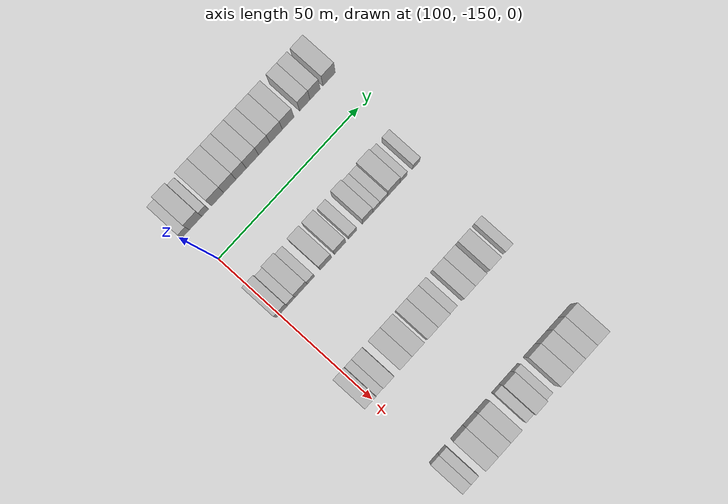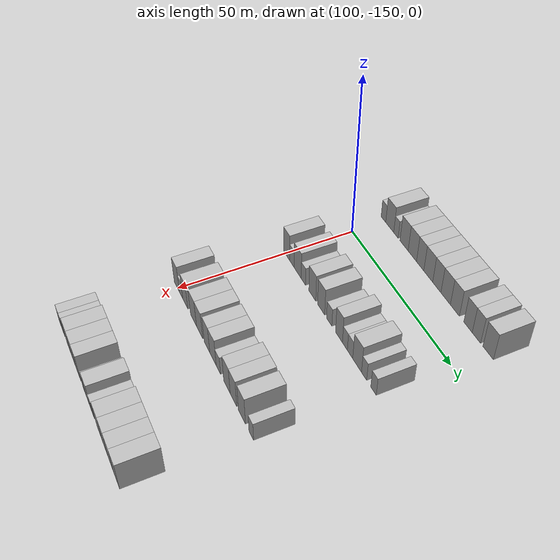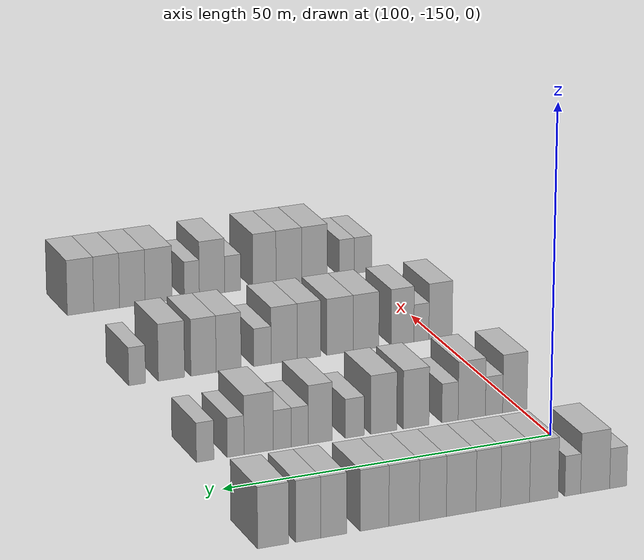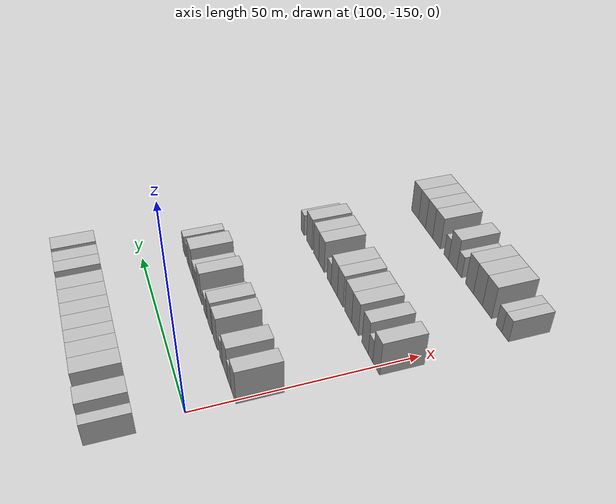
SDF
<sdf version="1.6">
 <world name="default">
  <model name="building_517">
   <static>1</static>
   <pose>85.0000 -150.8673 0 0.000000 0.000000 0.000000</pose>
   <link name="link">
    <pose>0 0 3.00 0 0 0</pose>
    <collision name="collision"><geometry><box><size>10.0000 2.6076 6.0000</size></box></geometry></collision>
    <visual name="visual">
     <cast_shadows>0</cast_shadows>
     <geometry><box><size>10.0000 2.6076 6.0000</size></box></geometry>
     <material>
      <script>
       <uri>model://HANNAS_wall/materials/scripts</uri>
       <uri>model://HANNAS_wall/materials/textures</uri>
       <name>vrc/HANNAS_wall</name>
      </script>
     </material>
    </visual>
   </link>
  </model>
  <model name="building_518">
   <static>1</static>
   <pose>85.0000 -147.3425 0 0.000000 0.000000 0.000000</pose>
   <link name="link">
    <pose>0 0 4.50 0 0 0</pose>
    <collision name="collision"><geometry><box><size>10.0000 4.4422 9.0000</size></box></geometry></collision>
    <visual name="visual">
     <cast_shadows>0</cast_shadows>
     <geometry><box><size>10.0000 4.4422 9.0000</size></box></geometry>
     <material>
      <script>
       <uri>model://HANNAS_wall/materials/scripts</uri>
       <uri>model://HANNAS_wall/materials/textures</uri>
       <name>vrc/HANNAS_wall</name>
      </script>
     </material>
    </visual>
   </link>
  </model>
  <model name="building_519">
   <static>1</static>
   <pose>85.0000 -143.9200 0 0.000000 0.000000 0.000000</pose>
   <link name="link">
    <pose>0 0 3.00 0 0 0</pose>
    <collision name="collision"><geometry><box><size>10.0000 2.4027 6.0000</size></box></geometry></collision>
    <visual name="visual">
     <cast_shadows>0</cast_shadows>
     <geometry><box><size>10.0000 2.4027 6.0000</size></box></geometry>
     <material>
      <script>
       <uri>model://HANNAS_wall/materials/scripts</uri>
       <uri>model://HANNAS_wall/materials/textures</uri>
       <name>vrc/HANNAS_wall</name>
      </script>
     </material>
    </visual>
   </link>
  </model>
  <model name="building_520">
   <static>1</static>
   <pose>85.0000 -139.5436 0 0.000000 0.000000 0.000000</pose>
   <link name="link">
    <pose>0 0 4.50 0 0 0</pose>
    <collision name="collision"><geometry><box><size>10.0000 4.3501 9.0000</size></box></geometry></collision>
    <visual name="visual">
     <cast_shadows>0</cast_shadows>
     <geometry><box><size>10.0000 4.3501 9.0000</size></box></geometry>
     <material>
      <script>
       <uri>model://HANNAS_wall/materials/scripts</uri>
       <uri>model://HANNAS_wall/materials/textures</uri>
       <name>vrc/HANNAS_wall</name>
      </script>
     </material>
    </visual>
   </link>
  </model>
  <model name="building_521">
   <static>1</static>
   <pose>85.0000 -135.1926 0 0.000000 0.000000 0.000000</pose>
   <link name="link">
    <pose>0 0 4.50 0 0 0</pose>
    <collision name="collision"><geometry><box><size>10.0000 4.3519 9.0000</size></box></geometry></collision>
    <visual name="visual">
     <cast_shadows>0</cast_shadows>
     <geometry><box><size>10.0000 4.3519 9.0000</size></box></geometry>
     <material>
      <script>
       <uri>model://HANNAS_wall/materials/scripts</uri>
       <uri>model://HANNAS_wall/materials/textures</uri>
       <name>vrc/HANNAS_wall</name>
      </script>
     </material>
    </visual>
   </link>
  </model>
  <model name="building_522">
   <static>1</static>
   <pose>85.0000 -131.1651 0 0.000000 0.000000 0.000000</pose>
   <link name="link">
    <pose>0 0 4.50 0 0 0</pose>
    <collision name="collision"><geometry><box><size>10.0000 3.7031 9.0000</size></box></geometry></collision>
    <visual name="visual">
     <cast_shadows>0</cast_shadows>
     <geometry><box><size>10.0000 3.7031 9.0000</size></box></geometry>
     <material>
      <script>
       <uri>model://HANNAS_wall/materials/scripts</uri>
       <uri>model://HANNAS_wall/materials/textures</uri>
       <name>vrc/HANNAS_wall</name>
      </script>
     </material>
    </visual>
   </link>
  </model>
  <model name="building_523">
   <static>1</static>
   <pose>85.0000 -127.1025 0 0.000000 0.000000 0.000000</pose>
   <link name="link">
    <pose>0 0 4.50 0 0 0</pose>
    <collision name="collision"><geometry><box><size>10.0000 4.4221 9.0000</size></box></geometry></collision>
    <visual name="visual">
     <cast_shadows>0</cast_shadows>
     <geometry><box><size>10.0000 4.4221 9.0000</size></box></geometry>
     <material>
      <script>
       <uri>model://HANNAS_wall/materials/scripts</uri>
       <uri>model://HANNAS_wall/materials/textures</uri>
       <name>vrc/HANNAS_wall</name>
      </script>
     </material>
    </visual>
   </link>
  </model>
  <model name="building_524">
   <static>1</static>
   <pose>85.0000 -122.8876 0 0.000000 0.000000 0.000000</pose>
   <link name="link">
    <pose>0 0 4.50 0 0 0</pose>
    <collision name="collision"><geometry><box><size>10.0000 4.0076 9.0000</size></box></geometry></collision>
    <visual name="visual">
     <cast_shadows>0</cast_shadows>
     <geometry><box><size>10.0000 4.0076 9.0000</size></box></geometry>
     <material>
      <script>
       <uri>model://HANNAS_wall/materials/scripts</uri>
       <uri>model://HANNAS_wall/materials/textures</uri>
       <name>vrc/HANNAS_wall</name>
      </script>
     </material>
    </visual>
   </link>
  </model>
  <model name="building_525">
   <static>1</static>
   <pose>85.0000 -118.6383 0 0.000000 0.000000 0.000000</pose>
   <link name="link">
    <pose>0 0 4.50 0 0 0</pose>
    <collision name="collision"><geometry><box><size>10.0000 4.4909 9.0000</size></box></geometry></collision>
    <visual name="visual">
     <cast_shadows>0</cast_shadows>
     <geometry><box><size>10.0000 4.4909 9.0000</size></box></geometry>
     <material>
      <script>
       <uri>model://HANNAS_wall/materials/scripts</uri>
       <uri>model://HANNAS_wall/materials/textures</uri>
       <name>vrc/HANNAS_wall</name>
      </script>
     </material>
    </visual>
   </link>
  </model>
  <model name="building_526">
   <static>1</static>
   <pose>85.0000 -114.3014 0 0.000000 0.000000 0.000000</pose>
   <link name="link">
    <pose>0 0 4.50 0 0 0</pose>
    <collision name="collision"><geometry><box><size>10.0000 4.1829 9.0000</size></box></geometry></collision>
    <visual name="visual">
     <cast_shadows>0</cast_shadows>
     <geometry><box><size>10.0000 4.1829 9.0000</size></box></geometry>
     <material>
      <script>
       <uri>model://HANNAS_wall/materials/scripts</uri>
       <uri>model://HANNAS_wall/materials/textures</uri>
       <name>vrc/HANNAS_wall</name>
      </script>
     </material>
    </visual>
   </link>
  </model>
  <model name="building_527">
   <static>1</static>
   <pose>85.0000 -108.3380 0 0.000000 0.000000 0.000000</pose>
   <link name="link">
    <pose>0 0 4.50 0 0 0</pose>
    <collision name="collision"><geometry><box><size>10.0000 3.7440 9.0000</size></box></geometry></collision>
    <visual name="visual">
     <cast_shadows>0</cast_shadows>
     <geometry><box><size>10.0000 3.7440 9.0000</size></box></geometry>
     <material>
      <script>
       <uri>model://HANNAS_wall/materials/scripts</uri>
       <uri>model://HANNAS_wall/materials/textures</uri>
       <name>vrc/HANNAS_wall</name>
      </script>
     </material>
    </visual>
   </link>
  </model>
  <model name="building_528">
   <static>1</static>
   <pose>85.0000 -104.6358 0 0.000000 0.000000 0.000000</pose>
   <link name="link">
    <pose>0 0 4.50 0 0 0</pose>
    <collision name="collision"><geometry><box><size>10.0000 3.6603 9.0000</size></box></geometry></collision>
    <visual name="visual">
     <cast_shadows>0</cast_shadows>
     <geometry><box><size>10.0000 3.6603 9.0000</size></box></geometry>
     <material>
      <script>
       <uri>model://HANNAS_wall/materials/scripts</uri>
       <uri>model://HANNAS_wall/materials/textures</uri>
       <name>vrc/HANNAS_wall</name>
      </script>
     </material>
    </visual>
   </link>
  </model>
  <model name="building_529">
   <static>1</static>
   <pose>85.0000 -99.5698 0 0.000000 0.000000 0.000000</pose>
   <link name="link">
    <pose>0 0 4.50 0 0 0</pose>
    <collision name="collision"><geometry><box><size>10.0000 4.4719 9.0000</size></box></geometry></collision>
    <visual name="visual">
     <cast_shadows>0</cast_shadows>
     <geometry><box><size>10.0000 4.4719 9.0000</size></box></geometry>
     <material>
      <script>
       <uri>model://HANNAS_wall/materials/scripts</uri>
       <uri>model://HANNAS_wall/materials/textures</uri>
       <name>vrc/HANNAS_wall</name>
      </script>
     </material>
    </visual>
   </link>
  </model>
  <model name="building_749">
   <static>1</static>
   <pose>115.0000 -148.9891 0 0.000000 0.000000 0.000000</pose>
   <link name="link">
    <pose>0 0 4.50 0 0 0</pose>
    <collision name="collision"><geometry><box><size>10.0000 3.8682 9.0000</size></box></geometry></collision>
    <visual name="visual">
     <cast_shadows>0</cast_shadows>
     <geometry><box><size>10.0000 3.8682 9.0000</size></box></geometry>
     <material>
      <script>
       <uri>model://HANNAS_wall/materials/scripts</uri>
       <uri>model://HANNAS_wall/materials/textures</uri>
       <name>vrc/HANNAS_wall</name>
      </script>
     </material>
    </visual>
   </link>
  </model>
  <model name="building_750">
   <static>1</static>
   <pose>115.0000 -145.6860 0 0.000000 0.000000 0.000000</pose>
   <link name="link">
    <pose>0 0 3.00 0 0 0</pose>
    <collision name="collision"><geometry><box><size>10.0000 2.7381 6.0000</size></box></geometry></collision>
    <visual name="visual">
     <cast_shadows>0</cast_shadows>
     <geometry><box><size>10.0000 2.7381 6.0000</size></box></geometry>
     <material>
      <script>
       <uri>model://HANNAS_wall/materials/scripts</uri>
       <uri>model://HANNAS_wall/materials/textures</uri>
       <name>vrc/HANNAS_wall</name>
      </script>
     </material>
    </visual>
   </link>
  </model>
  <model name="building_751">
   <static>1</static>
   <pose>115.0000 -142.1702 0 0.000000 0.000000 0.000000</pose>
   <link name="link">
    <pose>0 0 4.50 0 0 0</pose>
    <collision name="collision"><geometry><box><size>10.0000 4.2934 9.0000</size></box></geometry></collision>
    <visual name="visual">
     <cast_shadows>0</cast_shadows>
     <geometry><box><size>10.0000 4.2934 9.0000</size></box></geometry>
     <material>
      <script>
       <uri>model://HANNAS_wall/materials/scripts</uri>
       <uri>model://HANNAS_wall/materials/textures</uri>
       <name>vrc/HANNAS_wall</name>
      </script>
     </material>
    </visual>
   </link>
  </model>
  <model name="building_752">
   <static>1</static>
   <pose>115.0000 -138.7420 0 0.000000 0.000000 0.000000</pose>
   <link name="link">
    <pose>0 0 3.00 0 0 0</pose>
    <collision name="collision"><geometry><box><size>10.0000 2.5631 6.0000</size></box></geometry></collision>
    <visual name="visual">
     <cast_shadows>0</cast_shadows>
     <geometry><box><size>10.0000 2.5631 6.0000</size></box></geometry>
     <material>
      <script>
       <uri>model://HANNAS_wall/materials/scripts</uri>
       <uri>model://HANNAS_wall/materials/textures</uri>
       <name>vrc/HANNAS_wall</name>
      </script>
     </material>
    </visual>
   </link>
  </model>
  <model name="building_753">
   <static>1</static>
   <pose>115.0000 -133.4391 0 0.000000 0.000000 0.000000</pose>
   <link name="link">
    <pose>0 0 4.50 0 0 0</pose>
    <collision name="collision"><geometry><box><size>10.0000 4.0427 9.0000</size></box></geometry></collision>
    <visual name="visual">
     <cast_shadows>0</cast_shadows>
     <geometry><box><size>10.0000 4.0427 9.0000</size></box></geometry>
     <material>
      <script>
       <uri>model://HANNAS_wall/materials/scripts</uri>
       <uri>model://HANNAS_wall/materials/textures</uri>
       <name>vrc/HANNAS_wall</name>
      </script>
     </material>
    </visual>
   </link>
  </model>
  <model name="building_754">
   <static>1</static>
   <pose>115.0000 -128.4001 0 0.000000 0.000000 0.000000</pose>
   <link name="link">
    <pose>0 0 4.50 0 0 0</pose>
    <collision name="collision"><geometry><box><size>10.0000 4.0355 9.0000</size></box></geometry></collision>
    <visual name="visual">
     <cast_shadows>0</cast_shadows>
     <geometry><box><size>10.0000 4.0355 9.0000</size></box></geometry>
     <material>
      <script>
       <uri>model://HANNAS_wall/materials/scripts</uri>
       <uri>model://HANNAS_wall/materials/textures</uri>
       <name>vrc/HANNAS_wall</name>
      </script>
     </material>
    </visual>
   </link>
  </model>
  <model name="building_755">
   <static>1</static>
   <pose>115.0000 -123.9106 0 0.000000 0.000000 0.000000</pose>
   <link name="link">
    <pose>0 0 3.00 0 0 0</pose>
    <collision name="collision"><geometry><box><size>10.0000 2.9434 6.0000</size></box></geometry></collision>
    <visual name="visual">
     <cast_shadows>0</cast_shadows>
     <geometry><box><size>10.0000 2.9434 6.0000</size></box></geometry>
     <material>
      <script>
       <uri>model://HANNAS_wall/materials/scripts</uri>
       <uri>model://HANNAS_wall/materials/textures</uri>
       <name>vrc/HANNAS_wall</name>
      </script>
     </material>
    </visual>
   </link>
  </model>
  <model name="building_756">
   <static>1</static>
   <pose>115.0000 -118.6074 0 0.000000 0.000000 0.000000</pose>
   <link name="link">
    <pose>0 0 4.50 0 0 0</pose>
    <collision name="collision"><geometry><box><size>10.0000 3.6631 9.0000</size></box></geometry></collision>
    <visual name="visual">
     <cast_shadows>0</cast_shadows>
     <geometry><box><size>10.0000 3.6631 9.0000</size></box></geometry>
     <material>
      <script>
       <uri>model://HANNAS_wall/materials/scripts</uri>
       <uri>model://HANNAS_wall/materials/textures</uri>
       <name>vrc/HANNAS_wall</name>
      </script>
     </material>
    </visual>
   </link>
  </model>
  <model name="building_757">
   <static>1</static>
   <pose>115.0000 -115.4781 0 0.000000 0.000000 0.000000</pose>
   <link name="link">
    <pose>0 0 3.00 0 0 0</pose>
    <collision name="collision"><geometry><box><size>10.0000 2.5954 6.0000</size></box></geometry></collision>
    <visual name="visual">
     <cast_shadows>0</cast_shadows>
     <geometry><box><size>10.0000 2.5954 6.0000</size></box></geometry>
     <material>
      <script>
       <uri>model://HANNAS_wall/materials/scripts</uri>
       <uri>model://HANNAS_wall/materials/textures</uri>
       <name>vrc/HANNAS_wall</name>
      </script>
     </material>
    </visual>
   </link>
  </model>
  <model name="building_758">
   <static>1</static>
   <pose>115.0000 -112.8031 0 0.000000 0.000000 0.000000</pose>
   <link name="link">
    <pose>0 0 3.00 0 0 0</pose>
    <collision name="collision"><geometry><box><size>10.0000 2.7546 6.0000</size></box></geometry></collision>
    <visual name="visual">
     <cast_shadows>0</cast_shadows>
     <geometry><box><size>10.0000 2.7546 6.0000</size></box></geometry>
     <material>
      <script>
       <uri>model://HANNAS_wall/materials/scripts</uri>
       <uri>model://HANNAS_wall/materials/textures</uri>
       <name>vrc/HANNAS_wall</name>
      </script>
     </material>
    </visual>
   </link>
  </model>
  <model name="building_759">
   <static>1</static>
   <pose>115.0000 -109.2133 0 0.000000 0.000000 0.000000</pose>
   <link name="link">
    <pose>0 0 4.50 0 0 0</pose>
    <collision name="collision"><geometry><box><size>10.0000 4.4249 9.0000</size></box></geometry></collision>
    <visual name="visual">
     <cast_shadows>0</cast_shadows>
     <geometry><box><size>10.0000 4.4249 9.0000</size></box></geometry>
     <material>
      <script>
       <uri>model://HANNAS_wall/materials/scripts</uri>
       <uri>model://HANNAS_wall/materials/textures</uri>
       <name>vrc/HANNAS_wall</name>
      </script>
     </material>
    </visual>
   </link>
  </model>
  <model name="building_760">
   <static>1</static>
   <pose>115.0000 -105.7284 0 0.000000 0.000000 0.000000</pose>
   <link name="link">
    <pose>0 0 3.00 0 0 0</pose>
    <collision name="collision"><geometry><box><size>10.0000 2.5448 6.0000</size></box></geometry></collision>
    <visual name="visual">
     <cast_shadows>0</cast_shadows>
     <geometry><box><size>10.0000 2.5448 6.0000</size></box></geometry>
     <material>
      <script>
       <uri>model://HANNAS_wall/materials/scripts</uri>
       <uri>model://HANNAS_wall/materials/textures</uri>
       <name>vrc/HANNAS_wall</name>
      </script>
     </material>
    </visual>
   </link>
  </model>
  <model name="building_761">
   <static>1</static>
   <pose>115.0000 -101.1436 0 0.000000 0.000000 0.000000</pose>
   <link name="link">
    <pose>0 0 3.00 0 0 0</pose>
    <collision name="collision"><geometry><box><size>10.0000 2.6249 6.0000</size></box></geometry></collision>
    <visual name="visual">
     <cast_shadows>0</cast_shadows>
     <geometry><box><size>10.0000 2.6249 6.0000</size></box></geometry>
     <material>
      <script>
       <uri>model://HANNAS_wall/materials/scripts</uri>
       <uri>model://HANNAS_wall/materials/textures</uri>
       <name>vrc/HANNAS_wall</name>
      </script>
     </material>
    </visual>
   </link>
  </model>
  <model name="building_973">
   <static>1</static>
   <pose>145.0000 -150.4763 0 0.000000 0.000000 0.000000</pose>
   <link name="link">
    <pose>0 0 4.50 0 0 0</pose>
    <collision name="collision"><geometry><box><size>10.0000 3.8403 9.0000</size></box></geometry></collision>
    <visual name="visual">
     <cast_shadows>0</cast_shadows>
     <geometry><box><size>10.0000 3.8403 9.0000</size></box></geometry>
     <material>
      <script>
       <uri>model://HANNAS_wall/materials/scripts</uri>
       <uri>model://HANNAS_wall/materials/textures</uri>
       <name>vrc/HANNAS_wall</name>
      </script>
     </material>
    </visual>
   </link>
  </model>
  <model name="building_974">
   <static>1</static>
   <pose>145.0000 -147.3140 0 0.000000 0.000000 0.000000</pose>
   <link name="link">
    <pose>0 0 3.00 0 0 0</pose>
    <collision name="collision"><geometry><box><size>10.0000 2.4842 6.0000</size></box></geometry></collision>
    <visual name="visual">
     <cast_shadows>0</cast_shadows>
     <geometry><box><size>10.0000 2.4842 6.0000</size></box></geometry>
     <material>
      <script>
       <uri>model://HANNAS_wall/materials/scripts</uri>
       <uri>model://HANNAS_wall/materials/textures</uri>
       <name>vrc/HANNAS_wall</name>
      </script>
     </material>
    </visual>
   </link>
  </model>
  <model name="building_975">
   <static>1</static>
   <pose>145.0000 -144.2127 0 0.000000 0.000000 0.000000</pose>
   <link name="link">
    <pose>0 0 4.50 0 0 0</pose>
    <collision name="collision"><geometry><box><size>10.0000 3.7185 9.0000</size></box></geometry></collision>
    <visual name="visual">
     <cast_shadows>0</cast_shadows>
     <geometry><box><size>10.0000 3.7185 9.0000</size></box></geometry>
     <material>
      <script>
       <uri>model://HANNAS_wall/materials/scripts</uri>
       <uri>model://HANNAS_wall/materials/textures</uri>
       <name>vrc/HANNAS_wall</name>
      </script>
     </material>
    </visual>
   </link>
  </model>
  <model name="building_976">
   <static>1</static>
   <pose>145.0000 -138.2570 0 0.000000 0.000000 0.000000</pose>
   <link name="link">
    <pose>0 0 4.50 0 0 0</pose>
    <collision name="collision"><geometry><box><size>10.0000 4.1929 9.0000</size></box></geometry></collision>
    <visual name="visual">
     <cast_shadows>0</cast_shadows>
     <geometry><box><size>10.0000 4.1929 9.0000</size></box></geometry>
     <material>
      <script>
       <uri>model://HANNAS_wall/materials/scripts</uri>
       <uri>model://HANNAS_wall/materials/textures</uri>
       <name>vrc/HANNAS_wall</name>
      </script>
     </material>
    </visual>
   </link>
  </model>
  <model name="building_977">
   <static>1</static>
   <pose>145.0000 -134.0113 0 0.000000 0.000000 0.000000</pose>
   <link name="link">
    <pose>0 0 4.50 0 0 0</pose>
    <collision name="collision"><geometry><box><size>10.0000 4.2986 9.0000</size></box></geometry></collision>
    <visual name="visual">
     <cast_shadows>0</cast_shadows>
     <geometry><box><size>10.0000 4.2986 9.0000</size></box></geometry>
     <material>
      <script>
       <uri>model://HANNAS_wall/materials/scripts</uri>
       <uri>model://HANNAS_wall/materials/textures</uri>
       <name>vrc/HANNAS_wall</name>
      </script>
     </material>
    </visual>
   </link>
  </model>
  <model name="building_978">
   <static>1</static>
   <pose>145.0000 -128.9763 0 0.000000 0.000000 0.000000</pose>
   <link name="link">
    <pose>0 0 4.50 0 0 0</pose>
    <collision name="collision"><geometry><box><size>10.0000 3.7714 9.0000</size></box></geometry></collision>
    <visual name="visual">
     <cast_shadows>0</cast_shadows>
     <geometry><box><size>10.0000 3.7714 9.0000</size></box></geometry>
     <material>
      <script>
       <uri>model://HANNAS_wall/materials/scripts</uri>
       <uri>model://HANNAS_wall/materials/textures</uri>
       <name>vrc/HANNAS_wall</name>
      </script>
     </material>
    </visual>
   </link>
  </model>
  <model name="building_979">
   <static>1</static>
   <pose>145.0000 -125.0052 0 0.000000 0.000000 0.000000</pose>
   <link name="link">
    <pose>0 0 4.50 0 0 0</pose>
    <collision name="collision"><geometry><box><size>10.0000 4.1709 9.0000</size></box></geometry></collision>
    <visual name="visual">
     <cast_shadows>0</cast_shadows>
     <geometry><box><size>10.0000 4.1709 9.0000</size></box></geometry>
     <material>
      <script>
       <uri>model://HANNAS_wall/materials/scripts</uri>
       <uri>model://HANNAS_wall/materials/textures</uri>
       <name>vrc/HANNAS_wall</name>
      </script>
     </material>
    </visual>
   </link>
  </model>
  <model name="building_980">
   <static>1</static>
   <pose>145.0000 -121.5278 0 0.000000 0.000000 0.000000</pose>
   <link name="link">
    <pose>0 0 3.00 0 0 0</pose>
    <collision name="collision"><geometry><box><size>10.0000 2.7840 6.0000</size></box></geometry></collision>
    <visual name="visual">
     <cast_shadows>0</cast_shadows>
     <geometry><box><size>10.0000 2.7840 6.0000</size></box></geometry>
     <material>
      <script>
       <uri>model://HANNAS_wall/materials/scripts</uri>
       <uri>model://HANNAS_wall/materials/textures</uri>
       <name>vrc/HANNAS_wall</name>
      </script>
     </material>
    </visual>
   </link>
  </model>
  <model name="building_981">
   <static>1</static>
   <pose>145.0000 -116.1544 0 0.000000 0.000000 0.000000</pose>
   <link name="link">
    <pose>0 0 4.50 0 0 0</pose>
    <collision name="collision"><geometry><box><size>10.0000 3.9628 9.0000</size></box></geometry></collision>
    <visual name="visual">
     <cast_shadows>0</cast_shadows>
     <geometry><box><size>10.0000 3.9628 9.0000</size></box></geometry>
     <material>
      <script>
       <uri>model://HANNAS_wall/materials/scripts</uri>
       <uri>model://HANNAS_wall/materials/textures</uri>
       <name>vrc/HANNAS_wall</name>
      </script>
     </material>
    </visual>
   </link>
  </model>
  <model name="building_982">
   <static>1</static>
   <pose>145.0000 -112.1836 0 0.000000 0.000000 0.000000</pose>
   <link name="link">
    <pose>0 0 4.50 0 0 0</pose>
    <collision name="collision"><geometry><box><size>10.0000 3.9789 9.0000</size></box></geometry></collision>
    <visual name="visual">
     <cast_shadows>0</cast_shadows>
     <geometry><box><size>10.0000 3.9789 9.0000</size></box></geometry>
     <material>
      <script>
       <uri>model://HANNAS_wall/materials/scripts</uri>
       <uri>model://HANNAS_wall/materials/textures</uri>
       <name>vrc/HANNAS_wall</name>
      </script>
     </material>
    </visual>
   </link>
  </model>
  <model name="building_983">
   <static>1</static>
   <pose>145.0000 -107.1316 0 0.000000 0.000000 0.000000</pose>
   <link name="link">
    <pose>0 0 4.50 0 0 0</pose>
    <collision name="collision"><geometry><box><size>10.0000 4.1251 9.0000</size></box></geometry></collision>
    <visual name="visual">
     <cast_shadows>0</cast_shadows>
     <geometry><box><size>10.0000 4.1251 9.0000</size></box></geometry>
     <material>
      <script>
       <uri>model://HANNAS_wall/materials/scripts</uri>
       <uri>model://HANNAS_wall/materials/textures</uri>
       <name>vrc/HANNAS_wall</name>
      </script>
     </material>
    </visual>
   </link>
  </model>
  <model name="building_984">
   <static>1</static>
   <pose>145.0000 -101.7583 0 0.000000 0.000000 0.000000</pose>
   <link name="link">
    <pose>0 0 3.00 0 0 0</pose>
    <collision name="collision"><geometry><box><size>10.0000 2.6213 6.0000</size></box></geometry></collision>
    <visual name="visual">
     <cast_shadows>0</cast_shadows>
     <geometry><box><size>10.0000 2.6213 6.0000</size></box></geometry>
     <material>
      <script>
       <uri>model://HANNAS_wall/materials/scripts</uri>
       <uri>model://HANNAS_wall/materials/textures</uri>
       <name>vrc/HANNAS_wall</name>
      </script>
     </material>
    </visual>
   </link>
  </model>
  <model name="building_1196">
   <static>1</static>
   <pose>175.0000 -150.3203 0 0.000000 0.000000 0.000000</pose>
   <link name="link">
    <pose>0 0 3.00 0 0 0</pose>
    <collision name="collision"><geometry><box><size>10.0000 2.9594 6.0000</size></box></geometry></collision>
    <visual name="visual">
     <cast_shadows>0</cast_shadows>
     <geometry><box><size>10.0000 2.9594 6.0000</size></box></geometry>
     <material>
      <script>
       <uri>model://HANNAS_wall/materials/scripts</uri>
       <uri>model://HANNAS_wall/materials/textures</uri>
       <name>vrc/HANNAS_wall</name>
      </script>
     </material>
    </visual>
   </link>
  </model>
  <model name="building_1197">
   <static>1</static>
   <pose>175.0000 -147.5480 0 0.000000 0.000000 0.000000</pose>
   <link name="link">
    <pose>0 0 3.00 0 0 0</pose>
    <collision name="collision"><geometry><box><size>10.0000 2.5851 6.0000</size></box></geometry></collision>
    <visual name="visual">
     <cast_shadows>0</cast_shadows>
     <geometry><box><size>10.0000 2.5851 6.0000</size></box></geometry>
     <material>
      <script>
       <uri>model://HANNAS_wall/materials/scripts</uri>
       <uri>model://HANNAS_wall/materials/textures</uri>
       <name>vrc/HANNAS_wall</name>
      </script>
     </material>
    </visual>
   </link>
  </model>
  <model name="building_1198">
   <static>1</static>
   <pose>175.0000 -142.0750 0 0.000000 0.000000 0.000000</pose>
   <link name="link">
    <pose>0 0 4.50 0 0 0</pose>
    <collision name="collision"><geometry><box><size>10.0000 4.3609 9.0000</size></box></geometry></collision>
    <visual name="visual">
     <cast_shadows>0</cast_shadows>
     <geometry><box><size>10.0000 4.3609 9.0000</size></box></geometry>
     <material>
      <script>
       <uri>model://HANNAS_wall/materials/scripts</uri>
       <uri>model://HANNAS_wall/materials/textures</uri>
       <name>vrc/HANNAS_wall</name>
      </script>
     </material>
    </visual>
   </link>
  </model>
  <model name="building_1199">
   <static>1</static>
   <pose>175.0000 -137.7367 0 0.000000 0.000000 0.000000</pose>
   <link name="link">
    <pose>0 0 4.50 0 0 0</pose>
    <collision name="collision"><geometry><box><size>10.0000 4.3157 9.0000</size></box></geometry></collision>
    <visual name="visual">
     <cast_shadows>0</cast_shadows>
     <geometry><box><size>10.0000 4.3157 9.0000</size></box></geometry>
     <material>
      <script>
       <uri>model://HANNAS_wall/materials/scripts</uri>
       <uri>model://HANNAS_wall/materials/textures</uri>
       <name>vrc/HANNAS_wall</name>
      </script>
     </material>
    </visual>
   </link>
  </model>
  <model name="building_1200">
   <static>1</static>
   <pose>175.0000 -133.6240 0 0.000000 0.000000 0.000000</pose>
   <link name="link">
    <pose>0 0 4.50 0 0 0</pose>
    <collision name="collision"><geometry><box><size>10.0000 3.9097 9.0000</size></box></geometry></collision>
    <visual name="visual">
     <cast_shadows>0</cast_shadows>
     <geometry><box><size>10.0000 3.9097 9.0000</size></box></geometry>
     <material>
      <script>
       <uri>model://HANNAS_wall/materials/scripts</uri>
       <uri>model://HANNAS_wall/materials/textures</uri>
       <name>vrc/HANNAS_wall</name>
      </script>
     </material>
    </visual>
   </link>
  </model>
  <model name="building_1201">
   <static>1</static>
   <pose>175.0000 -128.3198 0 0.000000 0.000000 0.000000</pose>
   <link name="link">
    <pose>0 0 3.00 0 0 0</pose>
    <collision name="collision"><geometry><box><size>10.0000 2.6987 6.0000</size></box></geometry></collision>
    <visual name="visual">
     <cast_shadows>0</cast_shadows>
     <geometry><box><size>10.0000 2.6987 6.0000</size></box></geometry>
     <material>
      <script>
       <uri>model://HANNAS_wall/materials/scripts</uri>
       <uri>model://HANNAS_wall/materials/textures</uri>
       <name>vrc/HANNAS_wall</name>
      </script>
     </material>
    </visual>
   </link>
  </model>
  <model name="building_1202">
   <static>1</static>
   <pose>175.0000 -124.8680 0 0.000000 0.000000 0.000000</pose>
   <link name="link">
    <pose>0 0 4.50 0 0 0</pose>
    <collision name="collision"><geometry><box><size>10.0000 4.2050 9.0000</size></box></geometry></collision>
    <visual name="visual">
     <cast_shadows>0</cast_shadows>
     <geometry><box><size>10.0000 4.2050 9.0000</size></box></geometry>
     <material>
      <script>
       <uri>model://HANNAS_wall/materials/scripts</uri>
       <uri>model://HANNAS_wall/materials/textures</uri>
       <name>vrc/HANNAS_wall</name>
      </script>
     </material>
    </visual>
   </link>
  </model>
  <model name="building_1203">
   <static>1</static>
   <pose>175.0000 -121.5246 0 0.000000 0.000000 0.000000</pose>
   <link name="link">
    <pose>0 0 3.00 0 0 0</pose>
    <collision name="collision"><geometry><box><size>10.0000 2.4819 6.0000</size></box></geometry></collision>
    <visual name="visual">
     <cast_shadows>0</cast_shadows>
     <geometry><box><size>10.0000 2.4819 6.0000</size></box></geometry>
     <material>
      <script>
       <uri>model://HANNAS_wall/materials/scripts</uri>
       <uri>model://HANNAS_wall/materials/textures</uri>
       <name>vrc/HANNAS_wall</name>
      </script>
     </material>
    </visual>
   </link>
  </model>
  <model name="building_1204">
   <static>1</static>
   <pose>175.0000 -116.0578 0 0.000000 0.000000 0.000000</pose>
   <link name="link">
    <pose>0 0 4.50 0 0 0</pose>
    <collision name="collision"><geometry><box><size>10.0000 4.4517 9.0000</size></box></geometry></collision>
    <visual name="visual">
     <cast_shadows>0</cast_shadows>
     <geometry><box><size>10.0000 4.4517 9.0000</size></box></geometry>
     <material>
      <script>
       <uri>model://HANNAS_wall/materials/scripts</uri>
       <uri>model://HANNAS_wall/materials/textures</uri>
       <name>vrc/HANNAS_wall</name>
      </script>
     </material>
    </visual>
   </link>
  </model>
  <model name="building_1205">
   <static>1</static>
   <pose>175.0000 -111.7351 0 0.000000 0.000000 0.000000</pose>
   <link name="link">
    <pose>0 0 4.50 0 0 0</pose>
    <collision name="collision"><geometry><box><size>10.0000 4.1936 9.0000</size></box></geometry></collision>
    <visual name="visual">
     <cast_shadows>0</cast_shadows>
     <geometry><box><size>10.0000 4.1936 9.0000</size></box></geometry>
     <material>
      <script>
       <uri>model://HANNAS_wall/materials/scripts</uri>
       <uri>model://HANNAS_wall/materials/textures</uri>
       <name>vrc/HANNAS_wall</name>
      </script>
     </material>
    </visual>
   </link>
  </model>
  <model name="building_1206">
   <static>1</static>
   <pose>175.0000 -107.5344 0 0.000000 0.000000 0.000000</pose>
   <link name="link">
    <pose>0 0 4.50 0 0 0</pose>
    <collision name="collision"><geometry><box><size>10.0000 4.2079 9.0000</size></box></geometry></collision>
    <visual name="visual">
     <cast_shadows>0</cast_shadows>
     <geometry><box><size>10.0000 4.2079 9.0000</size></box></geometry>
     <material>
      <script>
       <uri>model://HANNAS_wall/materials/scripts</uri>
       <uri>model://HANNAS_wall/materials/textures</uri>
       <name>vrc/HANNAS_wall</name>
      </script>
     </material>
    </visual>
   </link>
  </model>
  <model name="building_1207">
   <static>1</static>
   <pose>175.0000 -103.2852 0 0.000000 0.000000 0.000000</pose>
   <link name="link">
    <pose>0 0 4.50 0 0 0</pose>
    <collision name="collision"><geometry><box><size>10.0000 4.2903 9.0000</size></box></geometry></collision>
    <visual name="visual">
     <cast_shadows>0</cast_shadows>
     <geometry><box><size>10.0000 4.2903 9.0000</size></box></geometry>
     <material>
      <script>
       <uri>model://HANNAS_wall/materials/scripts</uri>
       <uri>model://HANNAS_wall/materials/textures</uri>
       <name>vrc/HANNAS_wall</name>
      </script>
     </material>
    </visual>
   </link>
  </model>
 </world>
</sdf>
